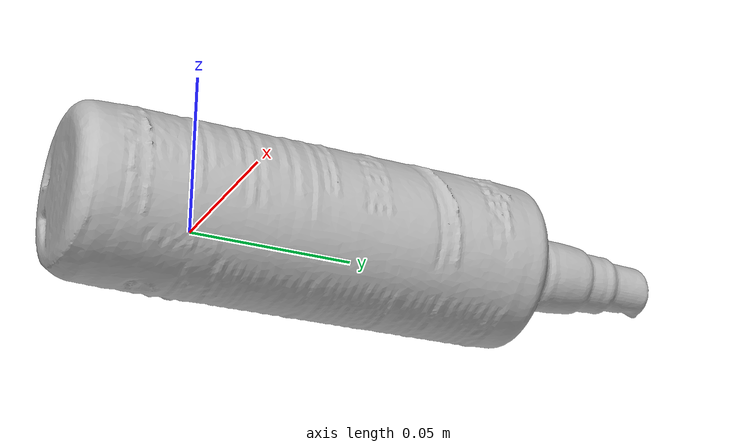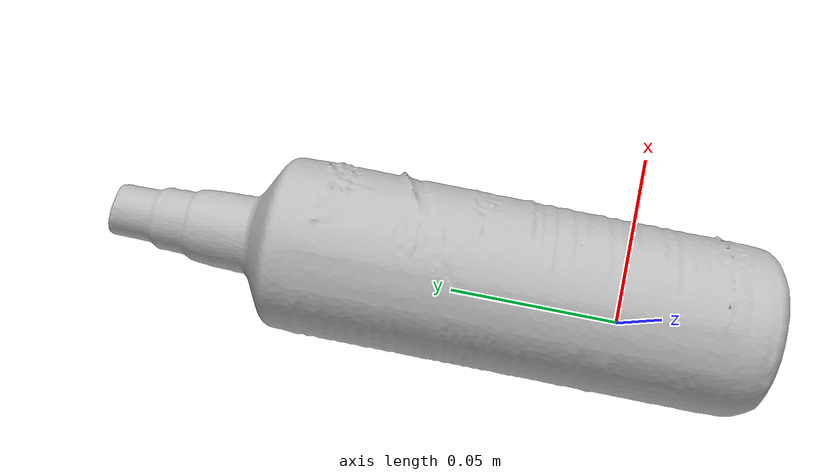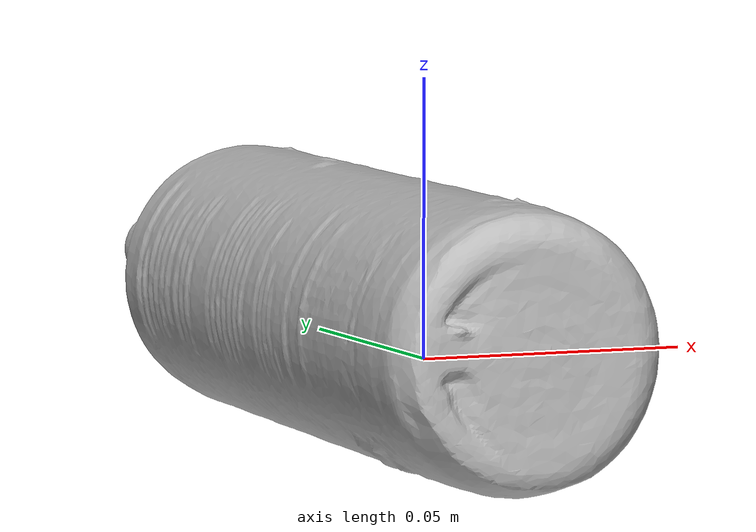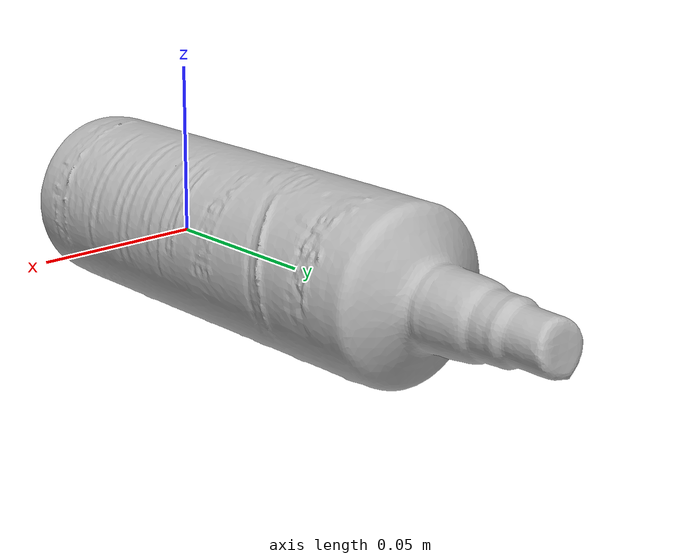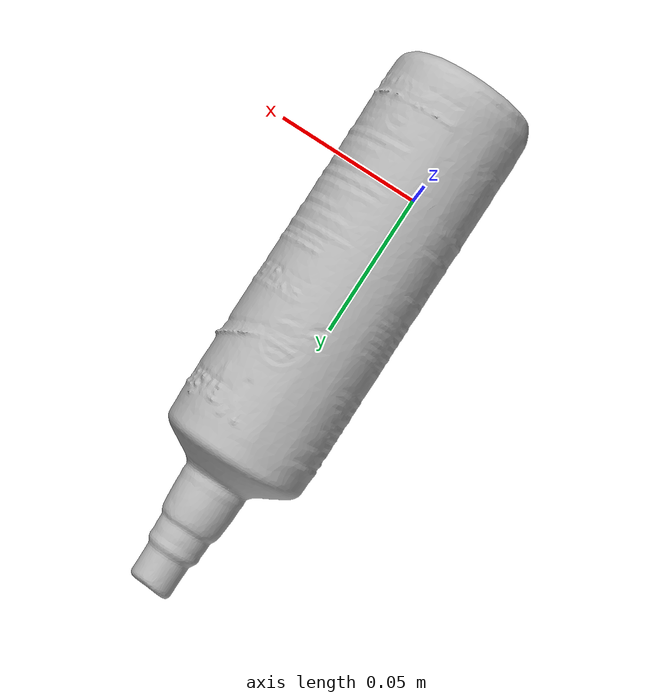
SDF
<?xml version='1.0'?>
<sdf version="1.4">
  <model name="HygieneSpray">
    <static>false</static>
    <link name="link">
      <inertial>
        <pose>0.00425362644780402 0.042100887542848305 0.005238218409249089 -1.5537195865542581 0.9850634331908374 0.013665342979154673</pose>
        <mass>0.033280058724542184</mass>
        <inertia>
          <ixx>8.140966377296661e-05</ixx>
          <ixy>6.2153990941324785e-21</ixy>
          <ixz>-5.130721458226502e-21</ixz>
          <iyy>8.12414378610013e-05</iyy>
          <iyz>-1.0552353645550312e-20</iyz>
          <izz>1.0257012179815638e-05</izz>
        </inertia>
      </inertial>
      <collision name="collision">
        <geometry>
          <mesh>
            <!-- Use a downsampled mesh for collisions -->
            <uri>model:///HygieneSpray/HygieneSpray_250_collision.obj</uri>
	        </mesh>
        </geometry>
        <surface>
      </surface>
      </collision>
      <visual name="visual">
        <geometry>
          <mesh>
            <uri>model:///HygieneSpray/HygieneSpray_25k_tex.obj</uri>
	        </mesh>
        </geometry>
        <material>
          <script>
            <uri>model:///HygieneSpray/HygieneSpray.material</uri>
            <name>HygieneSpray</name>
          </script>
        </material>
      </visual>
    </link>
  </model>
</sdf>
